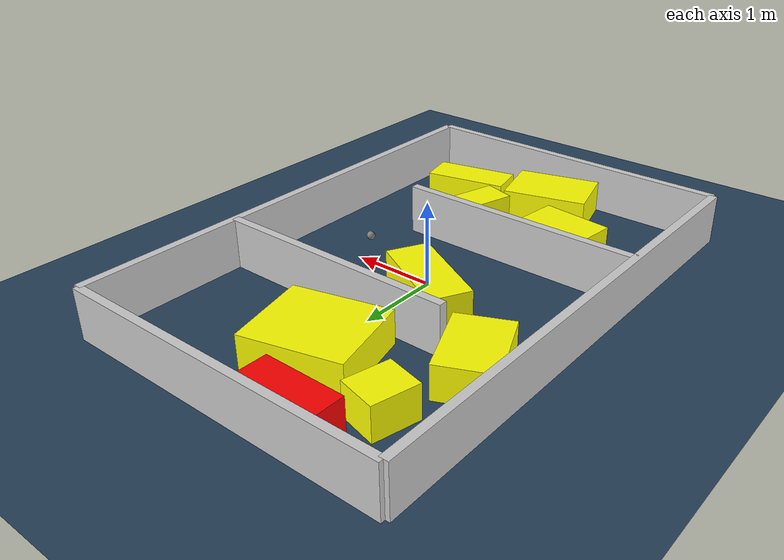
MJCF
<?xml version="1.0" ?>
<mujoco model="generated_environment">
  <option timestep="0.01" integrator="RK4" cone="elliptic"/>
  <default>
    <geom density="1"/>
  </default>
  <asset>
    <texture builtin="gradient" height="3072" rgb1="0.3 0.5 0.7" rgb2="0 0 0" type="skybox" width="512"/>
    <texture builtin="checker" height="300" mark="edge" markrgb="0.8 0.8 0.8" name="groundplane" rgb1="0.2 0.3 0.4" rgb2="0.1 0.2 0.3" type="2d" width="300"/>
    <material name="groundplane" reflectance="0.2" texrepeat="5 5" texture="groundplane" texuniform="true"/>
    <material name="robot" rgba="0.0 1.0 0.0 1"/>
  </asset>
  <worldbody>
    <light dir="0 0 -1" directional="true" pos="0 0 1.5"/>
    <geom condim="4" friction="1.0 0.005 0.001" material="groundplane" name="floor" size="0 0 0.05" type="plane"/>
    <body name="walls">
      <geom name="wall_1" condim="4" pos="-2.0 0.0 0.3" rgba="0.800000011920929 0.800000011920929 0.800000011920929 1.0" size="0.05 3.0 0.3" type="box"/>
      <geom name="wall_2" condim="4" pos="2.0 0.0 0.3" rgba="0.800000011920929 0.800000011920929 0.800000011920929 1.0" size="0.05 3.0 0.3" type="box"/>
      <geom name="wall_3" condim="4" pos="0.0 -3.0 0.3" rgba="0.800000011920929 0.800000011920929 0.800000011920929 1.0" size="2.0 0.05 0.3" type="box"/>
      <geom name="wall_4" condim="4" pos="0.0 3.0 0.3" rgba="0.800000011920929 0.800000011920929 0.800000011920929 1.0" size="2.0 0.05 0.3" type="box"/>
      <geom name="wall_5" condim="4" pos="-0.5 -1.0 0.3" rgba="0.800000011920929 0.800000011920929 0.800000011920929 1.0" size="1.5 0.05 0.3" type="box"/>
      <geom name="wall_6" condim="4" pos="0.5 1.0 0.3" rgba="0.800000011920929 0.800000011920929 0.800000011920929 1.0" size="1.5 0.05 0.3" type="box"/>
    </body>
    <body name="robot">
      <joint name="joint_x" type="slide" pos="0 0 0" axis="1 0 0"/>
      <joint name="joint_y" type="slide" pos="0 0 0" axis="0 1 0"/>
      <geom name="robot" type="sphere" pos="1.045119249423072 -0.22492424918158127 0.2" size="0.05" mass="5." friction="1.0 0.005 0.0001" condim="4"/>
      <site name="sensor_ball"/>
    </body>
    <body name="obstacle_1_movable">
      <geom name="obstacle_1_movable" condim="4" pos="-0.2502787254572132 0.3015616292826948 0.2" euler="0 0 241.95914135160155" friction="1.0 0.005 0.001" rgba="1 1 0 1" size="0.2558019090656517 0.5849309507061895 0.2" type="box" mass="0.1"/>
      <joint type="free"/>
    </body>
    <body name="obstacle_2_movable">
      <geom name="obstacle_2_movable" condim="4" pos="0.9578869904031848 -2.129535974620394 0.2" euler="0 0 282.4895213201005" friction="1.0 0.005 0.001" rgba="1 1 0 1" size="0.2235772105964677 0.5135359152861153 0.2" type="box" mass="0.1"/>
      <joint type="free"/>
    </body>
    <body name="obstacle_3_movable">
      <geom name="obstacle_3_movable" condim="4" pos="-0.7757594027388718 -1.5573765358769307 0.2" euler="0 0 263.226038786225" friction="1.0 0.005 0.001" rgba="1 1 0 1" size="0.3062965698748585 0.4386225009360638 0.2" type="box" mass="0.1"/>
      <joint type="free"/>
    </body>
    <body name="obstacle_4_movable">
      <geom name="obstacle_4_movable" condim="4" pos="-0.05794647831586275 1.7715320127903014 0.2" euler="0 0 284.1264533745712" friction="1.0 0.005 0.001" rgba="1 1 0 1" size="0.5117777904554077 0.5841528210649587 0.2" type="box" mass="0.1"/>
      <joint type="free"/>
    </body>
    <body name="obstacle_5_movable">
      <geom name="obstacle_5_movable" condim="4" pos="-1.1772181413160534 2.102394121842896 0.2" euler="0 0 256.2183795133338" friction="1.0 0.005 0.001" rgba="1 1 0 1" size="0.26870860443080563 0.2313090144714105 0.2" type="box" mass="0.1"/>
      <joint type="free"/>
    </body>
    <body name="obstacle_6_movable">
      <geom name="obstacle_6_movable" condim="4" pos="-0.10191019222886344 -2.435586132425429 0.2" euler="0 0 105.30855669511014" friction="1.0 0.005 0.001" rgba="1 1 0 1" size="0.37242822621499805 0.5188706406580238 0.2" type="box" mass="0.1"/>
      <joint type="free"/>
    </body>
    <body name="obstacle_7_movable">
      <geom name="obstacle_7_movable" condim="4" pos="0.44381395908038135 -1.5710889963727164 0.2" euler="0 0 73.92111085299976" friction="1.0 0.005 0.001" rgba="1 1 0 1" size="0.34761033421843723 0.20317391990746417 0.2" type="box" mass="0.1"/>
      <joint type="free"/>
    </body>
    <body name="obstacle_8_movable">
      <geom name="obstacle_8_movable" condim="4" pos="-1.4540032188962766 1.0971287044648195 0.2" euler="0 0 113.82316152441736" friction="1.0 0.005 0.001" rgba="1 1 0 1" size="0.4550192611578761 0.3263711480355997 0.2" type="box" mass="0.1"/>
      <joint type="free"/>
    </body>
    <body name="obstacle_9_static">
      <geom name="obstacle_9_static" condim="4" pos="-0.5822813974973566 2.6473160775577704 0.2" euler="0 0 179.6018148003079" friction="1.0 0.005 0.001" rgba="1 0 0 1" size="0.48891056954391426 0.20507230972951002 0.2" type="box"/>
    </body>
  </worldbody>
  <actuator>
    <motor name="actuator_x" joint="joint_x" gear="1" ctrlrange="-1 1"/>
    <motor name="actuator_y" joint="joint_y" gear="1" ctrlrange="-1 1"/>
  </actuator>
</mujoco>
